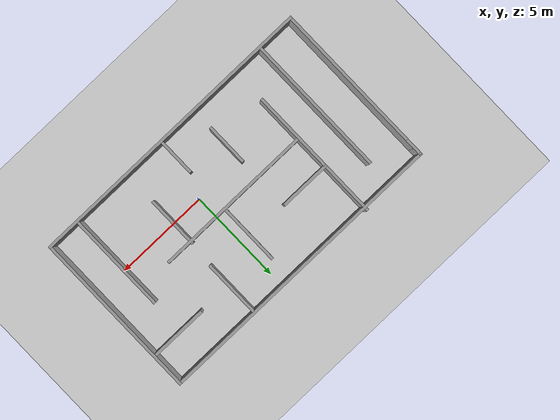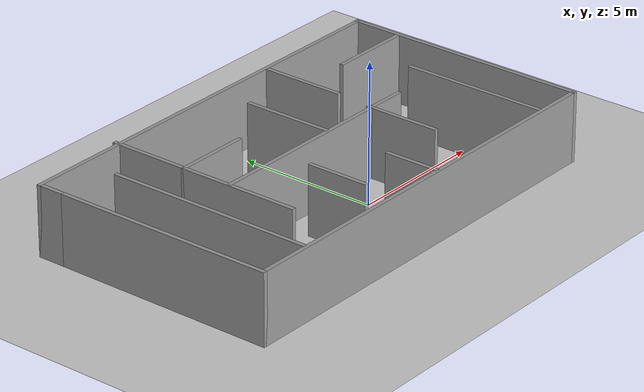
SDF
<sdf version="1.7">
 <world name="default">
  <light name="sun" type="directional">
   <pose>0 0 10 0 -0 0</pose>
   <diffuse>0.8 0.8 0.8 1</diffuse>
   <specular>0.2 0.2 0.2 1</specular>
   <attenuation>
    <range>1000</range>
    <constant>0.9</constant>
    <linear>0.01</linear>
    <quadratic>0.001</quadratic>
   </attenuation>
   <direction>-0.5 0.1 -0.9</direction>
   <spot><inner_angle>0</inner_angle><outer_angle>0</outer_angle><falloff>0</falloff></spot>
  </light>
  <model name="ground_plane">
   <static>1</static>
   <link name="link">
    <collision name="collision">
     <geometry><plane><normal>0 0 1</normal><size>100 100</size></plane></geometry>
     <surface>
      <contact><collide_bitmask>65535</collide_bitmask></contact>
      <friction><ode><mu>100</mu><mu2>50</mu2></ode></friction>
     </surface>
    </collision>
    <visual name="visual">
     <cast_shadows>0</cast_shadows>
     <geometry><plane><normal>0 0 1</normal><size>100 100</size></plane></geometry>
     <material>
      <script><uri>file://media/materials/scripts/gazebo.material</uri><name>Gazebo/Grey</name></script>
     </material>
    </visual>
   </link>
  </model>
  <gravity>0 0 -9.8</gravity>
  <magnetic_field>6e-06 2.3e-05 -4.2e-05</magnetic_field>
  <atmosphere type="adiabatic"/>
  <physics type="ode">
   <max_step_size>0.001</max_step_size>
   <real_time_factor>1</real_time_factor>
   <real_time_update_rate>1000</real_time_update_rate>
  </physics>
  <scene><ambient>0.4 0.4 0.4 1</ambient><background>0.7 0.7 0.7 1</background><shadows>1</shadows></scene>
  <spherical_coordinates>
   <surface_model>EARTH_WGS84</surface_model>
   <latitude_deg>0</latitude_deg>
   <longitude_deg>0</longitude_deg>
   <elevation>0</elevation>
   <heading_deg>0</heading_deg>
  </spherical_coordinates>
  <model name="hw_09_room">
   <pose>-1.20909 1.31785 0 0 -0 0</pose>
   <link name="Wall_0">
    <collision name="Wall_0_Collision">
     <geometry><box><size>8.5 0.15 2.5</size></box></geometry>
     <pose>0 0 1.25 0 -0 0</pose>
    </collision>
    <visual name="Wall_0_Visual">
     <pose>0 0 1.25 0 -0 0</pose>
     <geometry><box><size>8.5 0.15 2.5</size></box></geometry>
     <material>
      <script><uri>file://media/materials/scripts/gazebo.material</uri><name>Gazebo/Grey</name></script>
      <ambient>1 1 1 1</ambient>
     </material>
     <meta><layer>0</layer></meta>
    </visual>
    <pose>-7.8 -0.319202 0 0 -0 -1.5708</pose>
   </link>
   <link name="Wall_1">
    <collision name="Wall_1_Collision">
     <geometry><box><size>15.75 0.15 2.5</size></box></geometry>
     <pose>0 0 1.25 0 -0 0</pose>
    </collision>
    <visual name="Wall_1_Visual">
     <pose>0 0 1.25 0 -0 0</pose>
     <geometry><box><size>15.75 0.15 2.5</size></box></geometry>
     <material>
      <script><uri>file://media/materials/scripts/gazebo.material</uri><name>Gazebo/Grey</name></script>
      <ambient>1 1 1 1</ambient>
     </material>
     <meta><layer>0</layer></meta>
    </visual>
    <pose>0 -4.4942 0 0 -0 0</pose>
   </link>
   <link name="Wall_10">
    <collision name="Wall_10_Collision">
     <geometry><box><size>8.5 0.15 2.5</size></box></geometry>
     <pose>0 0 1.25 0 -0 0</pose>
    </collision>
    <visual name="Wall_10_Visual">
     <pose>0 0 1.25 0 -0 0</pose>
     <geometry><box><size>8.5 0.15 2.5</size></box></geometry>
     <material>
      <script><uri>file://media/materials/scripts/gazebo.material</uri><name>Gazebo/Grey</name></script>
      <ambient>1 1 1 1</ambient>
     </material>
     <meta><layer>0</layer></meta>
    </visual>
    <pose>0.045828 -0.134232 0 0 -0 0</pose>
   </link>
   <link name="Wall_12">
    <collision name="Wall_12_Collision">
     <geometry><box><size>2.25 0.15 2.5</size></box></geometry>
     <pose>0 0 1.25 0 -0 0</pose>
    </collision>
    <visual name="Wall_12_Visual">
     <pose>0 0 1.25 0 -0 0</pose>
     <geometry><box><size>2.25 0.15 2.5</size></box></geometry>
     <material>
      <script><uri>file://media/materials/scripts/gazebo.material</uri><name>Gazebo/Grey</name></script>
      <ambient>1 1 1 1</ambient>
     </material>
     <meta><layer>0</layer></meta>
    </visual>
    <pose>-1.52235 -2.24966 0 0 -0 1.5708</pose>
   </link>
   <link name="Wall_14">
    <collision name="Wall_14_Collision">
     <geometry><box><size>2 0.15 2.5</size></box></geometry>
     <pose>0 0 1.25 0 -0 0</pose>
    </collision>
    <visual name="Wall_14_Visual">
     <pose>0 0 1.25 0 -0 0</pose>
     <geometry><box><size>2 0.15 2.5</size></box></geometry>
     <material>
      <script><uri>file://media/materials/scripts/gazebo.material</uri><name>Gazebo/Grey</name></script>
      <ambient>1 1 1 1</ambient>
     </material>
     <meta><layer>0</layer></meta>
    </visual>
    <pose>0.605663 -3.47985 0 0 -0 -1.5708</pose>
   </link>
   <link name="Wall_16">
    <collision name="Wall_16_Collision">
     <geometry><box><size>2.75 0.15 2.5</size></box></geometry>
     <pose>0 0 1.25 0 -0 0</pose>
    </collision>
    <visual name="Wall_16_Visual">
     <pose>0 0 1.25 0 -0 0</pose>
     <geometry><box><size>2.75 0.15 2.5</size></box></geometry>
     <material>
      <script><uri>file://media/materials/scripts/gazebo.material</uri><name>Gazebo/Grey</name></script>
      <ambient>1 1 1 1</ambient>
     </material>
     <meta><layer>0</layer></meta>
    </visual>
    <pose>2.84008 -1.35443 0 0 -0 -1.5708</pose>
   </link>
   <link name="Wall_18">
    <collision name="Wall_18_Collision">
     <geometry><box><size>2.75 0.15 2.5</size></box></geometry>
     <pose>0 0 1.25 0 -0 0</pose>
    </collision>
    <visual name="Wall_18_Visual">
     <pose>0 0 1.25 0 -0 0</pose>
     <geometry><box><size>2.75 0.15 2.5</size></box></geometry>
     <material>
      <script><uri>file://media/materials/scripts/gazebo.material</uri><name>Gazebo/Grey</name></script>
      <ambient>1 1 1 1</ambient>
     </material>
     <meta><layer>0</layer></meta>
    </visual>
    <pose>-2.88237 1.67458 0 0 -0 0</pose>
   </link>
   <link name="Wall_2">
    <collision name="Wall_2_Collision">
     <geometry><box><size>9 0.15 2.5</size></box></geometry>
     <pose>0 0 1.25 0 -0 0</pose>
    </collision>
    <visual name="Wall_2_Visual">
     <pose>0 0 1.25 0 -0 0</pose>
     <geometry><box><size>9 0.15 2.5</size></box></geometry>
     <material>
      <script><uri>file://media/materials/scripts/gazebo.material</uri><name>Gazebo/Grey</name></script>
      <ambient>1 1 1 1</ambient>
     </material>
     <meta><layer>0</layer></meta>
    </visual>
    <pose>7.8 -0.069202 0 0 -0 1.5708</pose>
   </link>
   <link name="Wall_20">
    <collision name="Wall_20_Collision">
     <geometry><box><size>3.25 0.15 2.5</size></box></geometry>
     <pose>0 0 1.25 0 -0 0</pose>
    </collision>
    <visual name="Wall_20_Visual">
     <pose>0 0 1.25 0 -0 0</pose>
     <geometry><box><size>3.25 0.15 2.5</size></box></geometry>
     <material>
      <script><uri>file://media/materials/scripts/gazebo.material</uri><name>Gazebo/Grey</name></script>
      <ambient>1 1 1 1</ambient>
     </material>
     <meta><layer>0</layer></meta>
    </visual>
    <pose>0.632263 1.50779 0 0 -0 -1.5708</pose>
   </link>
   <link name="Wall_22">
    <collision name="Wall_22_Collision">
     <geometry><box><size>3 0.15 2.5</size></box></geometry>
     <pose>0 0 1.25 0 -0 0</pose>
    </collision>
    <visual name="Wall_22_Visual">
     <pose>0 0 1.25 0 -0 0</pose>
     <geometry><box><size>3 0.15 2.5</size></box></geometry>
     <material>
      <script><uri>file://media/materials/scripts/gazebo.material</uri><name>Gazebo/Grey</name></script>
      <ambient>1 1 1 1</ambient>
     </material>
     <meta><layer>0</layer></meta>
    </visual>
    <pose>2.97308 2.8032 0 0 -0 -1.5708</pose>
   </link>
   <link name="Wall_24">
    <collision name="Wall_24_Collision">
     <geometry><box><size>3 0.15 2.5</size></box></geometry>
     <pose>0 0 1.25 0 -0 0</pose>
    </collision>
    <visual name="Wall_24_Visual">
     <pose>0 0 1.25 0 -0 0</pose>
     <geometry><box><size>3 0.15 2.5</size></box></geometry>
     <material>
      <script><uri>file://media/materials/scripts/gazebo.material</uri><name>Gazebo/Grey</name></script>
      <ambient>1 1 1 1</ambient>
     </material>
     <meta><layer>0</layer></meta>
    </visual>
    <pose>6.23349 2.60559 0 0 -0 0</pose>
   </link>
   <link name="Wall_26">
    <collision name="Wall_26_Collision">
     <geometry><box><size>5.25 0.15 2.5</size></box></geometry>
     <pose>0 0 1.25 0 -0 0</pose>
    </collision>
    <visual name="Wall_26_Visual">
     <pose>0 0 1.25 0 -0 0</pose>
     <geometry><box><size>5.25 0.15 2.5</size></box></geometry>
     <material>
      <script><uri>file://media/materials/scripts/gazebo.material</uri><name>Gazebo/Grey</name></script>
      <ambient>1 1 1 1</ambient>
     </material>
     <meta><layer>0</layer></meta>
    </visual>
    <pose>6.0587 -1.80643 0 0 -0 -1.5708</pose>
   </link>
   <link name="Wall_3">
    <collision name="Wall_3_Collision">
     <geometry><box><size>15.75 0.15 2.5</size></box></geometry>
     <pose>0 0 1.25 0 -0 0</pose>
    </collision>
    <visual name="Wall_3_Visual">
     <pose>0 0 1.25 0 -0 0</pose>
     <geometry><box><size>15.75 0.15 2.5</size></box></geometry>
     <material>
      <script><uri>file://media/materials/scripts/gazebo.material</uri><name>Gazebo/Grey</name></script>
      <ambient>1 1 1 1</ambient>
     </material>
     <meta><layer>0</layer></meta>
    </visual>
    <pose>0 4.3558 0 0 -0 3.14159</pose>
   </link>
   <link name="Wall_4">
    <collision name="Wall_4_Collision">
     <geometry><box><size>1 0.15 2.5</size></box></geometry>
     <pose>0 0 1.25 0 -0 0</pose>
    </collision>
    <visual name="Wall_4_Visual">
     <pose>0 0 1.25 0 -0 0</pose>
     <geometry><box><size>1 0.15 2.5</size></box></geometry>
     <material>
      <script><uri>file://media/materials/scripts/gazebo.material</uri><name>Gazebo/Grey</name></script>
      <ambient>1 1 1 1</ambient>
     </material>
     <meta><layer>0</layer></meta>
    </visual>
    <pose>-7.8 3.9308 0 0 -0 -1.5708</pose>
   </link>
   <link name="Wall_6">
    <collision name="Wall_6_Collision">
     <geometry><box><size>7.5 0.15 2.5</size></box></geometry>
     <pose>0 0 1.25 0 -0 0</pose>
    </collision>
    <visual name="Wall_6_Visual">
     <pose>0 0 1.25 0 -0 0</pose>
     <geometry><box><size>7.5 0.15 2.5</size></box></geometry>
     <material>
      <script><uri>file://media/materials/scripts/gazebo.material</uri><name>Gazebo/Grey</name></script>
      <ambient>1 1 1 1</ambient>
     </material>
     <meta><layer>0</layer></meta>
    </visual>
    <pose>-5.80499 -0.688664 0 0 -0 1.5708</pose>
   </link>
   <link name="Wall_8">
    <collision name="Wall_8_Collision">
     <geometry><box><size>7.25 0.15 2.5</size></box></geometry>
     <pose>0 0 1.25 0 -0 0</pose>
    </collision>
    <visual name="Wall_8_Visual">
     <pose>0 0 1.25 0 -0 0</pose>
     <geometry><box><size>7.25 0.15 2.5</size></box></geometry>
     <material>
      <script><uri>file://media/materials/scripts/gazebo.material</uri><name>Gazebo/Grey</name></script>
      <ambient>1 1 1 1</ambient>
     </material>
     <meta><layer>0</layer></meta>
    </visual>
    <pose>-4.18237 0.944203 0 0 -0 -1.5708</pose>
   </link>
   <static>1</static>
  </model>
 </world>
</sdf>
